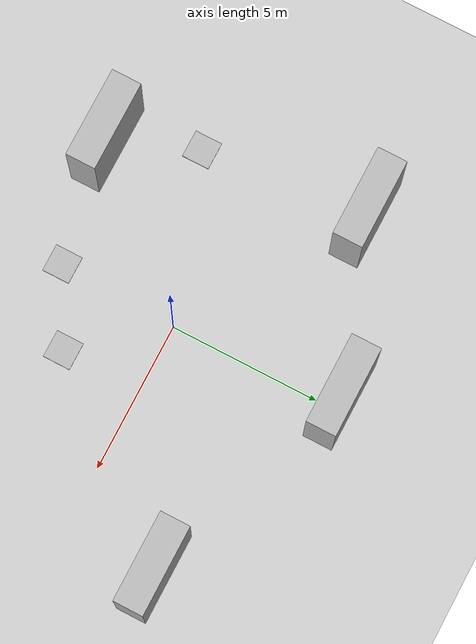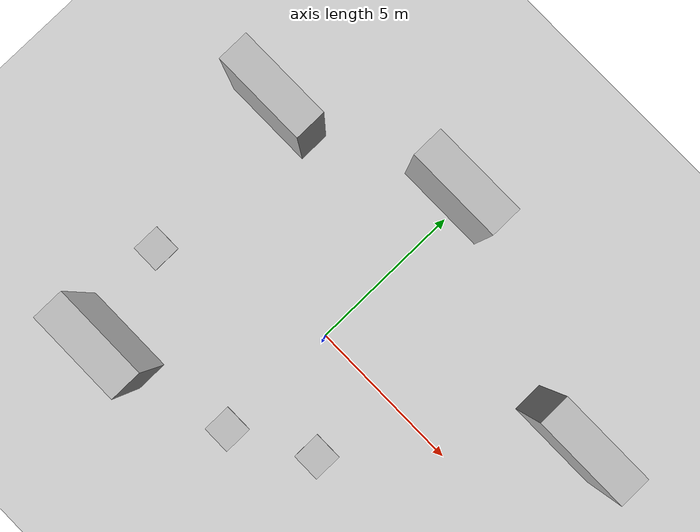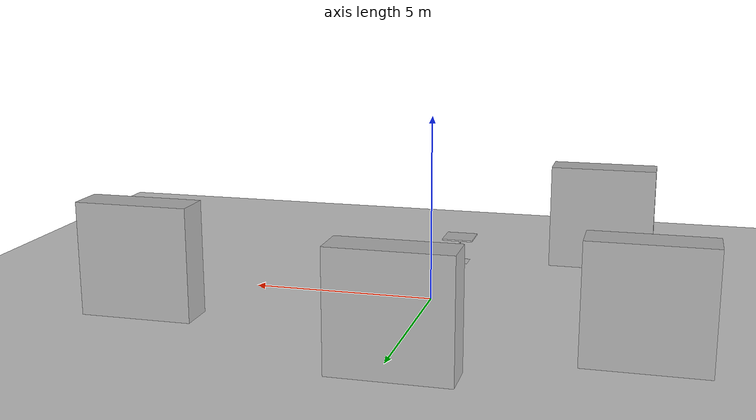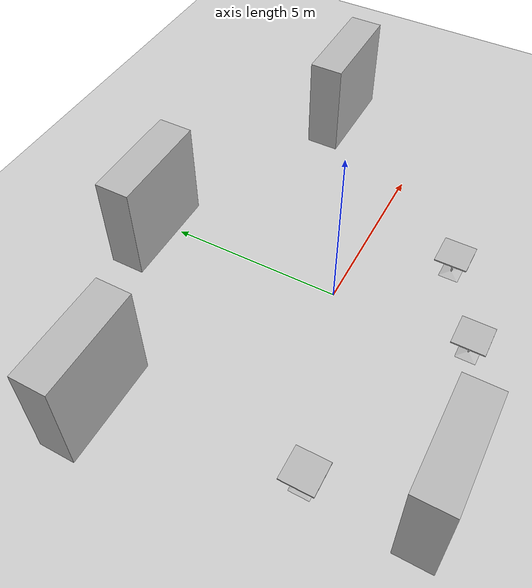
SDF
<sdf version="1.7">
 <world name="default">
  <light name="sun" type="directional">
   <pose>0 0 10 0 -0 0</pose>
   <diffuse>0.8 0.8 0.8 1</diffuse>
   <specular>0.2 0.2 0.2 1</specular>
   <attenuation>
    <range>1000</range>
    <constant>0.9</constant>
    <linear>0.01</linear>
    <quadratic>0.001</quadratic>
   </attenuation>
   <direction>-0.5 0.1 -0.9</direction>
   <spot><inner_angle>0</inner_angle><outer_angle>0</outer_angle><falloff>0</falloff></spot>
  </light>
  <model name="ground_plane">
   <static>1</static>
   <link name="link">
    <collision name="collision">
     <geometry><plane><normal>0 0 1</normal><size>100 100</size></plane></geometry>
     <surface>
      <contact><collide_bitmask>65535</collide_bitmask></contact>
      <friction><ode><mu>100</mu><mu2>50</mu2></ode></friction>
     </surface>
    </collision>
    <visual name="visual">
     <cast_shadows>0</cast_shadows>
     <geometry><plane><normal>0 0 1</normal><size>100 100</size></plane></geometry>
     <material>
      <script><uri>file://media/materials/scripts/gazebo.material</uri><name>Gazebo/Grey</name></script>
     </material>
    </visual>
   </link>
  </model>
  <gravity>0 0 -9.8</gravity>
  <magnetic_field>6e-06 2.3e-05 -4.2e-05</magnetic_field>
  <atmosphere type="adiabatic"/>
  <physics type="ode">
   <max_step_size>0.001</max_step_size>
   <real_time_factor>1</real_time_factor>
   <real_time_update_rate>1000</real_time_update_rate>
  </physics>
  <scene><ambient>0.4 0.4 0.4 1</ambient><background>0.7 0.7 0.7 1</background><shadows>1</shadows></scene>
  <spherical_coordinates>
   <surface_model>EARTH_WGS84</surface_model>
   <latitude_deg>0</latitude_deg>
   <longitude_deg>0</longitude_deg>
   <elevation>0</elevation>
   <heading_deg>0</heading_deg>
  </spherical_coordinates>
  <model name="brick_box_3x1x3">
   <static>1</static>
   <link name="chassis">
    <pose>0 0 1.5 0 -0 0</pose>
    <collision name="collision"><geometry><box><size>3 1 3</size></box></geometry></collision>
    <visual name="visual">
     <geometry><mesh><uri>model://brick_box_3x1x3/meshes/simple_box.dae</uri><scale>3 1 3</scale></mesh></geometry>
     <material>
      <script>
       <uri>model://brick_box_3x1x3/materials/scripts</uri>
       <uri>model://brick_box_3x1x3/materials/textures</uri>
       <name>BrickBox/Diffuse</name>
      </script>
     </material>
    </visual>
   </link>
   <pose>-0.346902 5.62572 0 0 -0 0</pose>
  </model>
  <model name="brick_box_3x1x3_0">
   <static>1</static>
   <link name="chassis">
    <pose>0 0 1.5 0 -0 0</pose>
    <collision name="collision"><geometry><box><size>3 1 3</size></box></geometry></collision>
    <visual name="visual">
     <geometry><mesh><uri>model://brick_box_3x1x3/meshes/simple_box.dae</uri><scale>3 1 3</scale></mesh></geometry>
     <material>
      <script>
       <uri>model://brick_box_3x1x3/materials/scripts</uri>
       <uri>model://brick_box_3x1x3/materials/textures</uri>
       <name>BrickBox/Diffuse</name>
      </script>
     </material>
    </visual>
   </link>
   <pose>-5.82487 3.70232 0 0 -0 0</pose>
  </model>
  <model name="brick_box_3x1x3_1">
   <static>1</static>
   <link name="chassis">
    <pose>0 0 1.5 0 -0 0</pose>
    <collision name="collision"><geometry><box><size>3 1 3</size></box></geometry></collision>
    <visual name="visual">
     <geometry><mesh><uri>model://brick_box_3x1x3/meshes/simple_box.dae</uri><scale>3 1 3</scale></mesh></geometry>
     <material>
      <script>
       <uri>model://brick_box_3x1x3/materials/scripts</uri>
       <uri>model://brick_box_3x1x3/materials/textures</uri>
       <name>BrickBox/Diffuse</name>
      </script>
     </material>
    </visual>
   </link>
   <pose>7.01963 3.05258 0 0 -0 0</pose>
  </model>
  <model name="cafe_table">
   <static>1</static>
   <link name="link">
    <collision name="surface">
     <pose>0 0 0.755 0 -0 0</pose>
     <geometry><box><size>0.913 0.913 0.04</size></box></geometry>
    </collision>
    <collision name="column">
     <pose>0 0 0.37 0 -0 0</pose>
     <geometry><box><size>0.042 0.042 0.74</size></box></geometry>
    </collision>
    <collision name="base">
     <pose>0 0 0.02 0 -0 0</pose>
     <geometry><box><size>0.56 0.56 0.04</size></box></geometry>
    </collision>
    <visual name="visual">
     <geometry><mesh><uri>model://cafe_table/meshes/cafe_table.dae</uri></mesh></geometry>
    </visual>
   </link>
   <pose>-5.27178 -1.76344 0 0 -0 0</pose>
  </model>
  <model name="cafe_table_0">
   <static>1</static>
   <link name="link">
    <collision name="surface">
     <pose>0 0 0.755 0 -0 0</pose>
     <geometry><box><size>0.913 0.913 0.04</size></box></geometry>
    </collision>
    <collision name="column">
     <pose>0 0 0.37 0 -0 0</pose>
     <geometry><box><size>0.042 0.042 0.74</size></box></geometry>
    </collision>
    <collision name="base">
     <pose>0 0 0.02 0 -0 0</pose>
     <geometry><box><size>0.56 0.56 0.04</size></box></geometry>
    </collision>
    <visual name="visual">
     <geometry><mesh><uri>model://cafe_table/meshes/cafe_table.dae</uri></mesh></geometry>
    </visual>
   </link>
   <pose>-0.043893 -3.89201 0 0 -0 0</pose>
  </model>
  <model name="cafe_table_1">
   <static>1</static>
   <link name="link">
    <collision name="surface">
     <pose>0 0 0.755 0 -0 0</pose>
     <geometry><box><size>0.913 0.913 0.04</size></box></geometry>
    </collision>
    <collision name="column">
     <pose>0 0 0.37 0 -0 0</pose>
     <geometry><box><size>0.042 0.042 0.74</size></box></geometry>
    </collision>
    <collision name="base">
     <pose>0 0 0.02 0 -0 0</pose>
     <geometry><box><size>0.56 0.56 0.04</size></box></geometry>
    </collision>
    <visual name="visual">
     <geometry><mesh><uri>model://cafe_table/meshes/cafe_table.dae</uri></mesh></geometry>
    </visual>
   </link>
   <pose>2.32608 -2.58262 0 0 -0 0</pose>
  </model>
  <model name="brick_box_3x1x3_2">
   <static>1</static>
   <link name="chassis">
    <pose>0 0 1.5 0 -0 0</pose>
    <collision name="collision"><geometry><box><size>3 1 3</size></box></geometry></collision>
    <visual name="visual">
     <geometry><mesh><uri>model://brick_box_3x1x3/meshes/simple_box.dae</uri><scale>3 1 3</scale></mesh></geometry>
     <material>
      <script>
       <uri>model://brick_box_3x1x3/materials/scripts</uri>
       <uri>model://brick_box_3x1x3/materials/textures</uri>
       <name>BrickBox/Diffuse</name>
      </script>
     </material>
    </visual>
   </link>
   <pose>-4.23236 -4.58034 0 0 -0 0</pose>
  </model>
 </world>
</sdf>
